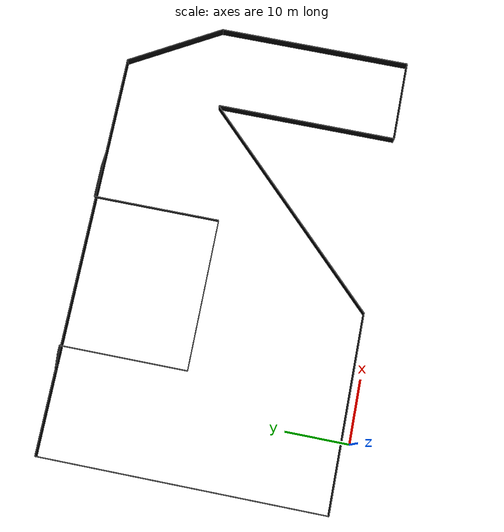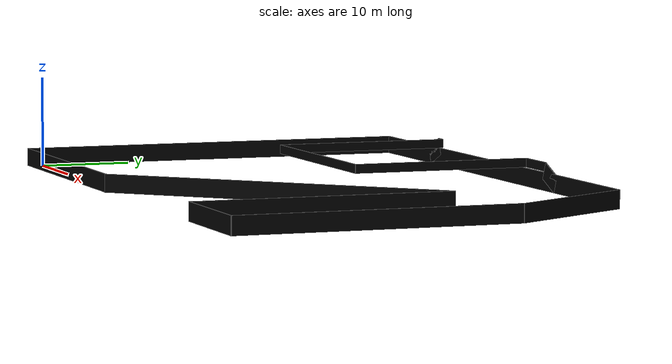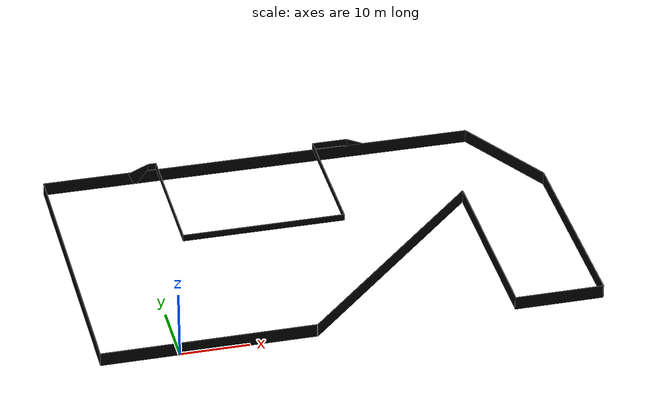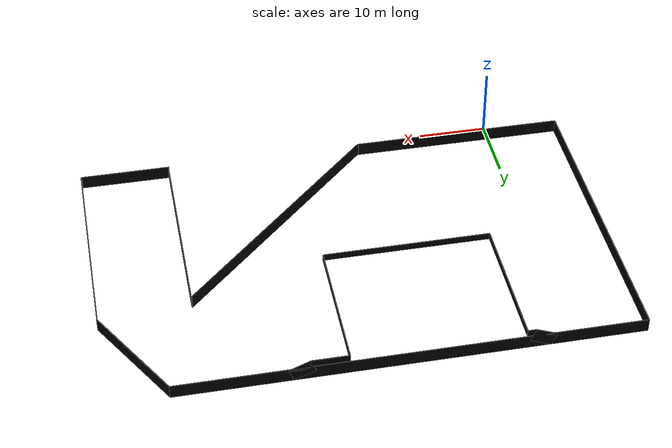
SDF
<?xml version="1.0"?>
<sdf version="1.4">
  <model name="outer_wall">
    <static>true</static>
    <link name="link">
      <collision name="collision">
        <geometry>
          <box>
            <size>1 0.1 3</size>
          </box>
        </geometry>
        <surface>
          <friction>
            <ode>
              <mu>1</mu>
              <mu2>1</mu2>
              <fdir1>0.000000 0.000000 0.000000</fdir1>
              <slip1>0.000000</slip1>
              <slip2>0.000000</slip2>
            </ode>
          </friction>
          <bounce>
            <restitution_coefficient>0.000000</restitution_coefficient>
            <threshold>100000.000000</threshold>
          </bounce>
          <contact>
            <ode>
              <soft_cfm>0.000000</soft_cfm>
              <soft_erp>0.200000</soft_erp>
              <kp>100000.000000</kp>
              <kd>1.000000</kd>
              <max_vel>100.000000</max_vel>
              <min_depth>0.001000</min_depth>
            </ode>
          </contact>
        </surface>
      </collision>
      <visual name="visual_1">
        <pose>-11 23.8 0  0 0 1.5708</pose>
        <cast_shadows>true</cast_shadows>
        <geometry>
          <box>
            <size>45 0.1 2</size>
          </box>
        </geometry>
        <material>
          <ambient>238 156 48 1</ambient>
          <diffuse>0 0 0 1</diffuse>
          <specular>0 0 0 0</specular>
          <emissive>0 0 0 1</emissive>
        </material>
      </visual>
      <visual name="visual_2">
        <pose>4.5 1.3 0  0 0 0</pose>
        <cast_shadows>true</cast_shadows>
        <geometry>
          <box>
            <size>31 0.1 2</size>
          </box>
        </geometry>
        <material>
          <ambient>238 156 48 1</ambient>
          <diffuse>0 0 0 1</diffuse>
          <specular>0 0 0 0</specular>
          <emissive>0 0 0 1</emissive>
        </material>
      </visual>
      <visual name="visual_3">
        <pose>34.5   15.65 0  0 0 0.785398</pose>
        <cast_shadows>true</cast_shadows>
        <geometry>
          <box>
            <size>40.8006 0.1 2</size>
          </box>
        </geometry>
        <material>
          <ambient>238 156 48 1</ambient>
          <diffuse>0 0 0 1</diffuse>
          <specular>0 0 0 0</specular>
          <emissive>0 0 0 1</emissive>
        </material>
      </visual>
      <visual name="visual_4">
        <pose>49 15.65 0  0 0 1.5708</pose>
        <cast_shadows>true</cast_shadows>
        <geometry>
          <box>
            <size>28.7 0.1 2</size>
          </box>
        </geometry>
        <material>
          <ambient>238 156 48 1</ambient>
          <diffuse>0 0 0 1</diffuse>
          <specular>0 0 0 0</specular>
          <emissive>0 0 0 1</emissive>
        </material>
      </visual>
      <visual name="visual_5">
        <pose>55.4 1.3 0  0 0 0</pose>
        <cast_shadows>true</cast_shadows>
        <geometry>
          <box>
            <size>13 0.1 2</size>
          </box>
        </geometry>
        <material>
          <ambient>238 156 48 1</ambient>
          <diffuse>0 0 0 1</diffuse>
          <specular>0 0 0 0</specular>
          <emissive>0 0 0 1</emissive>
        </material>
      </visual>
      <visual name="visual_6">
        <pose>62 16.65 0  0 0 1.5708</pose>
        <cast_shadows>true</cast_shadows>
        <geometry>
          <box>
            <size>30.7 0.1 2</size>
          </box>
        </geometry>
        <material>
          <ambient>238 156 48 1</ambient>
          <diffuse>0 0 0 1</diffuse>
          <specular>0 0 0 0</specular>
          <emissive>0 0 0 1</emissive>
        </material>
      </visual>
      <visual name="visual_7">
        <pose>57.9 39.15 0  0 0 2.094399</pose>
        <cast_shadows>true</cast_shadows>
        <geometry>
          <box>
            <size>16.4842 0.1 2</size>
          </box>
        </geometry>
        <material>
          <ambient>238 156 48 1</ambient>
          <diffuse>0 0 0 1</diffuse>
          <specular>0 0 0 0</specular>
          <emissive>0 0 0 1</emissive>
        </material>
      </visual>
      <visual name="visual_8">
        <pose>21.4 46.3 0  0 0 0</pose>
        <cast_shadows>true</cast_shadows>
        <geometry>
          <box>
            <size>64.8 0.1 2</size>
          </box>
        </geometry>
        <material>
          <ambient>238 156 48 1</ambient>
          <diffuse>0 0 0 1</diffuse>
          <specular>0 0 0 0</specular>
          <emissive>0 0 0 1</emissive>
        </material>
      </visual>
      <visual name="visual_12">
        <pose>5.375 46.3 1.6  0 0 0</pose>
        <cast_shadows>true</cast_shadows>
        <geometry>
          <box>
            <size>1.25 0.1 1</size>
          </box>
        </geometry>
        <material>
          <ambient>238 156 48 1</ambient>
          <diffuse>0 0 0 1</diffuse>
          <specular>0 0 0 0</specular>
          <emissive>0 0 0 1</emissive>
        </material>
      </visual>
      <visual name="visual_13">
        <pose>32.625 46.3 1.6  0 0 0</pose>
        <cast_shadows>true</cast_shadows>
        <geometry>
          <box>
            <size>5.25 0.1 1</size>
          </box>
        </geometry>
        <material>
          <ambient>238 156 48 1</ambient>
          <diffuse>0 0 0 1</diffuse>
          <specular>0 0 0 0</specular>
          <emissive>0 0 0 1</emissive>
        </material>
      </visual>
      <visual name="visual_14">
        <pose>36.36 46.3 0.52  0 0.4 0</pose>
        <cast_shadows>true</cast_shadows>
        <geometry>
          <box>
            <size>3.25 0.1 2</size>
          </box>
        </geometry>
        <material>
          <ambient>238 156 48 1</ambient>
          <diffuse>0 0 0 1</diffuse>
          <specular>0 0 0 0</specular>
          <emissive>0 0 0 1</emissive>
        </material>
      </visual>
      <visual name="visual_15">
        <pose>3.64 46.3 0.52  0 -0.4 0</pose>
        <cast_shadows>true</cast_shadows>
        <geometry>
          <box>
            <size>3.25 0.1 2</size>
          </box>
        </geometry>
        <material>
          <ambient>238 156 48 1</ambient>
          <diffuse>0 0 0 1</diffuse>
          <specular>0 0 0 0</specular>
          <emissive>0 0 0 1</emissive>
        </material>
      </visual>

       <visual name="visual_9">
        <pose>6 36.3 1.6  0 0 1.5708</pose>
        <cast_shadows>true</cast_shadows>
        <geometry>
          <box>
            <size>20 0.1 1</size>
          </box>
        </geometry>
        <material>
          <ambient>238 156 48 1</ambient>
          <diffuse>0 0 0 1</diffuse>
          <specular>0 0 0 0</specular>
          <emissive>0 0 0 1</emissive>
        </material>
      </visual>
      <visual name="visual_10">
        <pose>18 26.3 1.6  0 0 0</pose>
        <cast_shadows>true</cast_shadows>
        <geometry>
          <box>
            <size>24 0.1 1</size>
          </box>
        </geometry>
        <material>
          <ambient>238 156 48 1</ambient>
          <diffuse>0 0 0 1</diffuse>
          <specular>0 0 0 0</specular>
          <emissive>0 0 0 1</emissive>
        </material>
      </visual>
      <visual name="visual_11">
        <pose>30 36.3 1.6  0 0 1.5708</pose>
        <cast_shadows>true</cast_shadows>
        <geometry>
          <box>
            <size>20 0.1 1</size>
          </box>
        </geometry>
        <material>
          <ambient>238 156 48 1</ambient>
          <diffuse>0 0 0 1</diffuse>
          <specular>0 0 0 0</specular>
          <emissive>0 0 0 1</emissive>
        </material>
      </visual>

    </link>
  </model>
</sdf>
